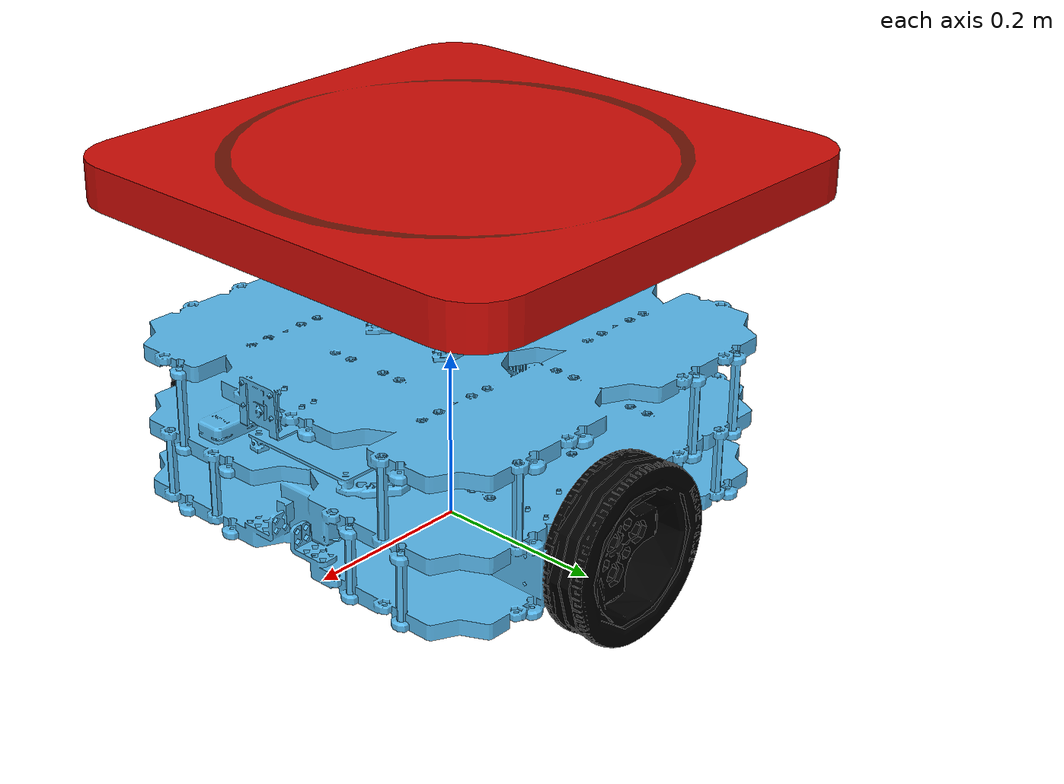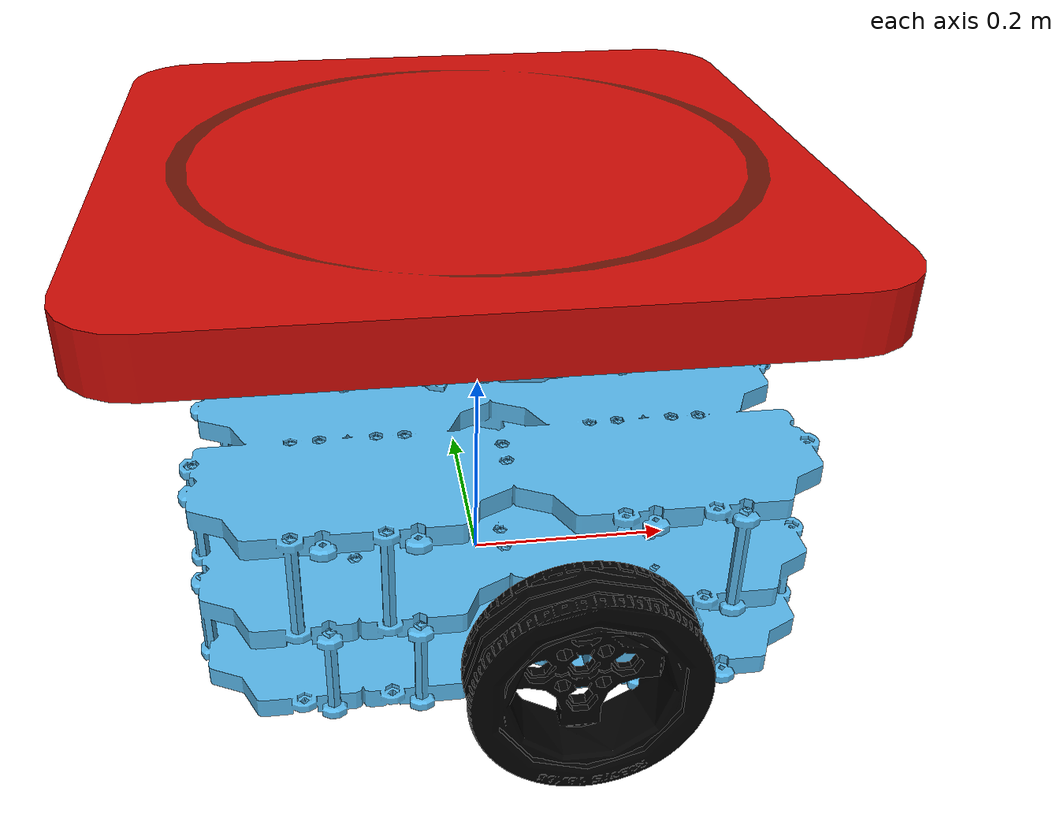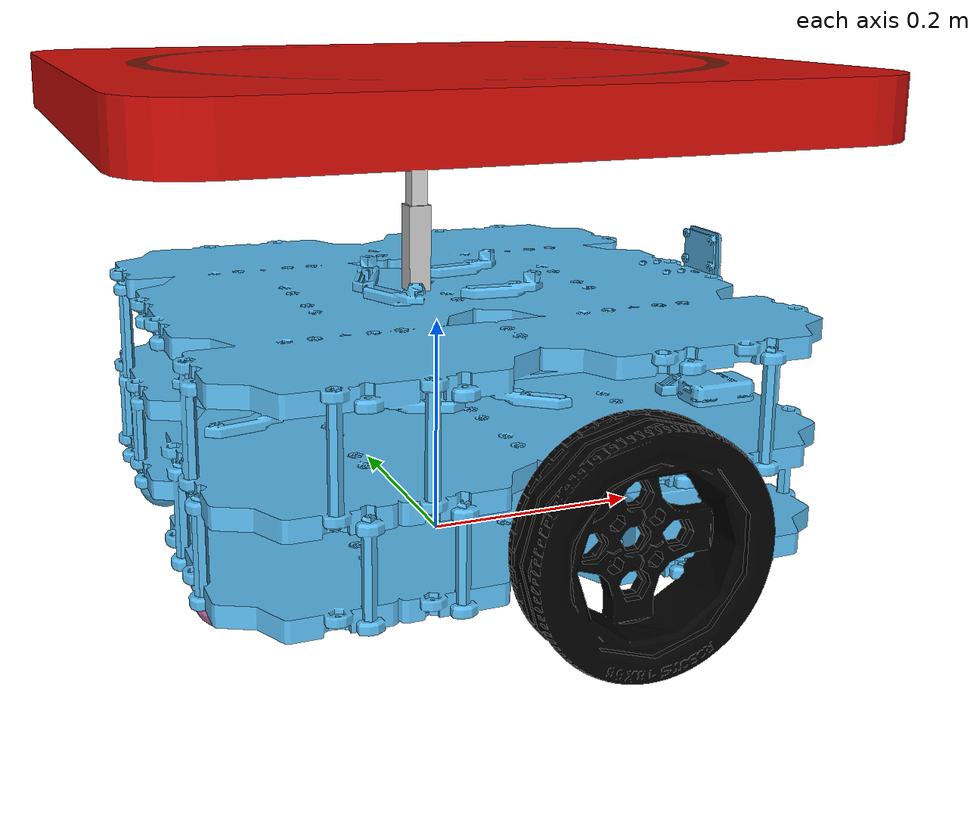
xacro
<?xml version="1.0" ?>
<robot name="logistic_holonomic_robot"
  xmlns:xacro="http://ros.org/wiki/xacro">

  <xacro:arg name="namespace" default="logistic_robot"/>
  <xacro:property name="namespace" value="$(arg namespace)"/>

  <xacro:include filename="$(find custom_robots)/models/logistic_holonomic_robot/logistic_holonomic_robot_gz.urdf.xacro"/>
  <xacro:include filename="$(find custom_robots)/models/logistic_holonomic_robot/logistic_holonomic_robot_common.urdf.xacro"/>

  <xacro:logistic_holonomic_robot namespace="${namespace}"/>
</robot>

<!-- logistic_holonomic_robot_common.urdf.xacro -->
<robot xmlns:xacro="http://ros.org/wiki/xacro">
  <xacro:include filename="$(find custom_robots)/models/logistic_holonomic_robot/logistic_holonomic_robot_gz.urdf.xacro"/>

  <xacro:macro name="logistic_holonomic_robot" params="namespace">
    <link name="base_footprint" />

    <link name="base">
      <inertial>
        <mass value="1.5"/>
        <inertia ixx="0.001" ixy="0" ixz="0" iyy="0.001" iyz="0" izz="0.001"/>
      </inertial>
      <collision>
        <origin rpy="0 0 0" xyz="0 0 0.07"/>
        <geometry>
          <box size="0.532 0.532 0.188"/>
        </geometry>
      </collision>
      <visual>
        <geometry>
          <mesh filename="$(find custom_robots)/models/logistic_holonomic_robot/meshes/waffle_pi_base.dae" scale="0.002 0.002 0.002"/>
        </geometry>
      </visual>
    </link>

    <joint name="base_to_base_footprint" type="fixed">
      <origin rpy="0 0 0" xyz="0 0 0.048"/>
      <parent link="base_footprint"/>
      <child link="base"/>
    </joint>

    <joint name="left_wheel_joint" type="continuous">
      <origin rpy="-1.57 0 0" xyz="0.05 0.288 0.046"/>
      <parent link="base"/>
      <child link="left_wheel_link"/>
      <axis xyz="0 0 1"/>
      <limit effort="1000" velocity="100"/>
    </joint>

    <link name="left_wheel_link">
      <inertial>
        <mass value="0.1"/>
        <inertia ixx="0.001" ixy="0" ixz="0" iyy="0.001" iyz="0" izz="0.001"/>
      </inertial>
      <collision>
        <geometry>
          <cylinder radius="0.1" length="0.02"/>
        </geometry>
        <gz>
          <surface>
            <friction>
              <ode>
                <mu>10.0</mu>
                <mu2>10.0</mu2>
                <fdir1>0 0 0</fdir1>
                <slip1>0.0</slip1>
                <slip2>0.0</slip2>
              </ode>
            </friction>
            <contact>
              <ode>
                <soft_cfm>0.001</soft_cfm>
                <soft_erp>0.5</soft_erp>
                <kp>1e+5</kp>
                <kd>1</kd>
                <max_vel>0.01</max_vel>
                <min_depth>0.001</min_depth>
              </ode>
            </contact>
          </surface>
        </gz>
      </collision>
      <visual>
        <origin rpy="1.57 0 0" xyz="0 0 0"/>
        <geometry>
          <mesh filename="$(find custom_robots)/models/logistic_holonomic_robot/meshes/left_tire.dae" scale="0.003 0.003 0.003"/>
        </geometry>
      </visual>
    </link>

    <joint name="right_wheel_joint" type="continuous">
      <origin rpy="-1.57 0 0" xyz="0.05 -0.288 0.046"/>
      <parent link="base"/>
      <child link="right_wheel_link"/>
      <axis xyz="0 0 1"/>
      <limit effort="1000" velocity="100"/>
    </joint>

    <link name="right_wheel_link">
      <inertial>
        <mass value="0.1"/>
        <inertia ixx="0.001" ixy="0" ixz="0" iyy="0.001" iyz="0" izz="0.001"/>
      </inertial>
      <collision>
        <geometry>
          <cylinder radius="0.1" length="0.02"/>
        </geometry>
        <gz>
          <surface>
            <friction>
              <ode>
                <mu>10.0</mu>
                <mu2>10.0</mu2>
                <fdir1>0 0 0</fdir1>
                <slip1>0.0</slip1>
                <slip2>0.0</slip2>
              </ode>
            </friction>
            <contact>
              <ode>
                <soft_cfm>0.001</soft_cfm>
                <soft_erp>0.5</soft_erp>
                <kp>1e+5</kp>
                <kd>1</kd>
                <max_vel>0.01</max_vel>
                <min_depth>0.001</min_depth>
              </ode>
            </contact>
          </surface>
        </gz>
      </collision>
      <visual>
        <origin rpy="1.57 0 0" xyz="0 0 0"/>
        <geometry>
          <mesh filename="$(find custom_robots)/models/logistic_holonomic_robot/meshes/right_tire.dae" scale="0.003 0.003 0.003"/>
        </geometry>
      </visual>
    </link>

    <link name="back_right_caster_roll_link">
      <inertial>
        <mass value="0.0001"/>
        <inertia ixx="1" ixy="0" ixz="0" iyy="1" iyz="0" izz="1"/>
      </inertial>
    </link>

    <link name="back_right_caster_pitch_link">
      <inertial>
        <mass value="0.0001"/>
        <inertia ixx="1" ixy="0" ixz="0" iyy="1" iyz="0" izz="1"/>
      </inertial>
    </link>

    <joint name="back_right_caster_joint_roll" type="continuous">
      <origin rpy="0 0 0" xyz="-0.23 -0.13 -0.0175"/>
      <parent link="base"/>
      <child link="back_right_caster_roll_link"/>
      <axis xyz="1 0 0"/>
      <limit effort="1000" velocity="100"/>
    </joint>

    <joint name="back_right_caster_joint_pitch" type="continuous">
      <origin rpy="0 0 0" xyz="0 0 0"/>
      <parent link="back_right_caster_roll_link"/>
      <child link="back_right_caster_pitch_link"/>
      <axis xyz="0 1 0"/>
      <limit effort="1000" velocity="100"/>
    </joint>

    <joint name="back_right_caster_joint_yaw" type="continuous">
      <origin rpy="0 0 0" xyz="0 0 0"/>
      <parent link="back_right_caster_pitch_link"/>
      <child link="back_right_caster_link"/>
      <axis xyz="0 0 1"/>
      <limit effort="1000" velocity="100"/>
    </joint>

    <link name="back_right_caster_link">
      <inertial>
        <mass value="0.8"/>
        <inertia ixx="0.00001" ixy="0" ixz="0" iyy="0.00001" iyz="0" izz="0.00001"/>
      </inertial>
      <collision>
        <geometry>
          <sphere radius="0.025"/>
        </geometry>
        <gz>
          <surface>
            <contact>
              <ode>
                <soft_cfm>0</soft_cfm>
                <soft_erp>0.2</soft_erp>
                <kp>1e+5</kp>
                <kd>1</kd>
                <max_vel>0.01</max_vel>
                <min_depth>0.001</min_depth>
              </ode>
            </contact>
          </surface>
        </gz>
      </collision>
      <visual>
        <geometry>
          <sphere radius="0.025"/>
        </geometry>
      </visual>
    </link>

    <link name="back_left_caster_roll_link">
      <inertial>
        <mass value="0.0001"/>
        <inertia ixx="1" ixy="0" ixz="0" iyy="1" iyz="0" izz="1"/>
      </inertial>
    </link>

    <link name="back_left_caster_pitch_link">
      <inertial>
        <mass value="0.0001"/>
        <inertia ixx="1" ixy="0" ixz="0" iyy="1" iyz="0" izz="1"/>
      </inertial>
    </link>

    <joint name="back_left_caster_joint_roll" type="continuous">
      <origin rpy="0 0 0" xyz="-0.23  0.13 -0.0175"/>
      <parent link="base"/>
      <child link="back_left_caster_roll_link"/>
      <axis xyz="0 0 1"/>
      <limit effort="1000" velocity="100"/>
    </joint>

    <joint name="back_left_caster_joint_pitch" type="continuous">
      <origin rpy="0 0 0" xyz="0 0 0"/>
      <parent link="back_left_caster_roll_link"/>
      <child link="back_left_caster_pitch_link"/>
      <axis xyz="0 1 0"/>
      <limit effort="1000" velocity="100"/>
    </joint>

    <joint name="back_left_caster_joint_yaw" type="continuous">
      <origin rpy="0 0 0" xyz="0 0 0"/>
      <parent link="back_left_caster_pitch_link"/>
      <child link="back_left_caster_link"/>
      <axis xyz="1 0 0"/>
      <limit effort="1000" velocity="100"/>
    </joint>

    <link name="back_left_caster_link">
      <inertial>
        <mass value="0.8"/>
        <inertia ixx="0.00001" ixy="0" ixz="0" iyy="0.00001" iyz="0" izz="0.00001"/>
      </inertial>
      <collision>
        <geometry>
          <sphere radius="0.025"/>
        </geometry>
        <gz>
          <surface>
            <contact>
              <ode>
                <soft_cfm>0</soft_cfm>
                <soft_erp>0.2</soft_erp>
                <kp>1e+5</kp>
                <kd>1</kd>
                <max_vel>0.01</max_vel>
                <min_depth>0.001</min_depth>
              </ode>
            </contact>
          </surface>
        </gz>
      </collision>
      <visual>
        <geometry>
          <sphere radius="0.025"/>
        </geometry>
      </visual>
    </link>

    <joint name="platform_support_joint" type="fixed">
      <origin rpy="0 0 0" xyz="-0.02 0.0 0.2"/>
      <parent link="base"/>
      <child link="platform_support_link"/>
    </joint>

    <link name="platform_support_link">
      <inertial>
        <mass value="0.1"/>
        <inertia ixx="0.001" ixy="0" ixz="0" iyy="0.001" iyz="0" izz="0.001"/>
      </inertial>
      <visual>
        <geometry>
          <mesh filename="$(find custom_robots)/models/logistic_holonomic_robot/meshes/fixed_support.dae" scale="0.5 0.5 0.5"/>
        </geometry>
      </visual>
    </link>

    <joint name="lift_joint" type="prismatic">
      <origin rpy="0 0 0" xyz="0 0.0 0.09"/>
      <parent link="platform_support_link"/>
      <child link="platform_link"/>
      <axis xyz="0 0 1"/>
      <limit effort="20" velocity="0.5" lower="0.01" upper="0.13"/>
      <dynamics damping="0.01" friction="0" spring_reference="0" spring_stiffness="0"/>
      <gz>
        <physics>
          <provide_feedback>1</provide_feedback>
          <ode>
            <implicit_spring_damper>0</implicit_spring_damper>
            <cfm_damping>0</cfm_damping>
            <limit>
              <cfm>0.0</cfm>
              <erp>0.8</erp>
            </limit>
          </ode>
        </physics>
      </gz>
    </joint>

    <link name="platform_link">
      <inertial>
        <mass value="0.1"/>
        <inertia ixx="0.001" ixy="0" ixz="0" iyy="0.001" iyz="0" izz="0.001"/>
      </inertial>
      <collision>
        <origin rpy="0 0 0" xyz="0 0 0.045"/>
        <geometry>
          <box size="0.55 0.55 0.04"/>
        </geometry>
        <gz>
          <surface>
            <friction>
              <ode>
                <mu>1000000</mu>
                <mu2>100000</mu2>
                <fdir1>0 0 0</fdir1>
                <slip1>0.0</slip1>
                <slip2>0.0</slip2>
              </ode>
            </friction>
            <contact>
              <ode>
                <soft_cfm>0</soft_cfm>
                <soft_erp>0.2</soft_erp>
                <kp>1e+5</kp>
                <kd>1</kd>
                <max_vel>0.01</max_vel>
                <min_depth>0.001</min_depth>
              </ode>
            </contact>
          </surface>
        </gz>
      </collision>
      <visual>
        <geometry>
          <mesh filename="$(find custom_robots)/models/logistic_holonomic_robot/meshes/platform2.dae" scale="0.5 0.5 0.5"/>
        </geometry>
      </visual>
    </link>

    <xacro:velocity namespace="${namespace}"/>
    <xacro:odom namespace="${namespace}" freq="50"/>
    <xacro:joints topic="joint_state" vel_topic="platform/cmd_vel" namespace="${namespace}"/>
  </xacro:macro>
</robot>
